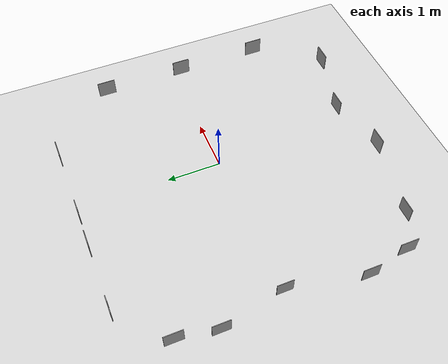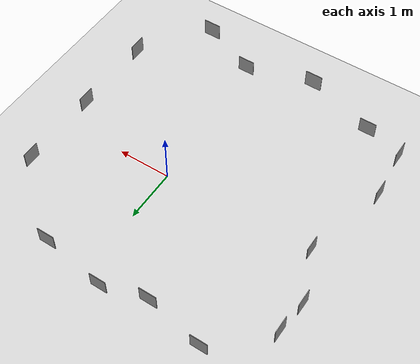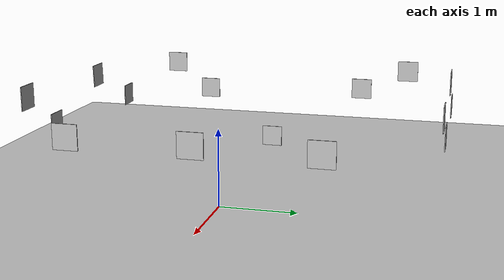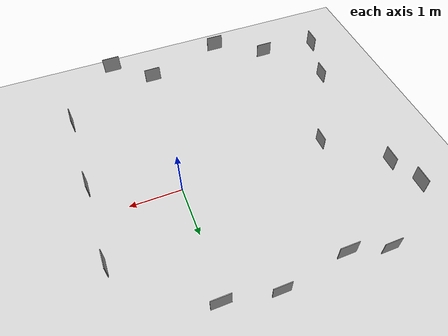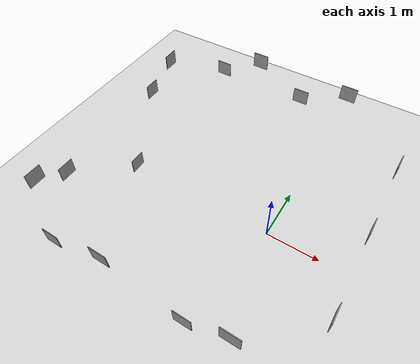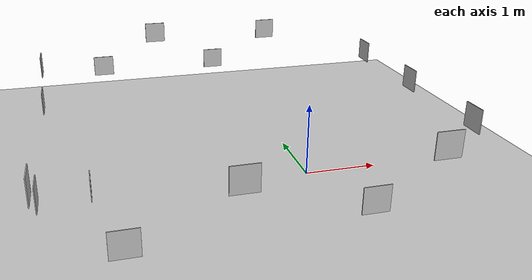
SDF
<sdf version="1.6">
 <world name="default">
  <plugin name="ros_link_attacher_plugin" filename="libgazebo_ros_link_attacher.so"/>
  <light name="sun" type="directional">
   <pose>0 0 10 0 -0 0</pose>
   <diffuse>0.8 0.8 0.8 1</diffuse>
   <specular>0.2 0.2 0.2 1</specular>
   <attenuation>
    <range>1000</range>
    <constant>0.9</constant>
    <linear>0.01</linear>
    <quadratic>0.001</quadratic>
   </attenuation>
   <direction>-0.5 0.1 -0.9</direction>
  </light>
  <model name="ground_plane">
   <static>1</static>
   <link name="link">
    <collision name="collision">
     <geometry><plane><normal>0 0 1</normal><size>100 100</size></plane></geometry>
     <surface>
      <contact><collide_bitmask>65535</collide_bitmask></contact>
      <friction><ode><mu>100</mu><mu2>50</mu2></ode></friction>
     </surface>
    </collision>
    <visual name="visual">
     <cast_shadows>0</cast_shadows>
     <geometry><plane><normal>0 0 1</normal><size>100 100</size></plane></geometry>
     <material>
      <script><uri>file://media/materials/scripts/gazebo.material</uri><name>Gazebo/Grey</name></script>
     </material>
    </visual>
   </link>
  </model>
  <gravity>0 0 -9.8</gravity>
  <magnetic_field>6e-06 2.3e-05 -4.2e-05</magnetic_field>
  <atmosphere type="adiabatic"/>
  <physics name="default_physics" default="0" type="ode">
   <max_step_size>0.001</max_step_size>
   <real_time_factor>1</real_time_factor>
   <real_time_update_rate>1000</real_time_update_rate>
  </physics>
  <scene><ambient>0.4 0.4 0.4 1</ambient><background>0.7 0.7 0.7 1</background><shadows>1</shadows></scene>
  <audio><device>default</device></audio>
  <spherical_coordinates>
   <surface_model>EARTH_WGS84</surface_model>
   <latitude_deg>0</latitude_deg>
   <longitude_deg>0</longitude_deg>
   <elevation>0</elevation>
   <heading_deg>0</heading_deg>
  </spherical_coordinates>
  <model name="Apriltag36_11_00002">
   <link name="main">
    <visual name="main_Visual">
     <geometry><box><size>0.3 0.3 0.01</size></box></geometry>
     <material>
      <script>
       <uri>model://Apriltag36_11_00002/materials/scripts</uri>
       <uri>model://Apriltag36_11_00002/materials/textures</uri>
       <name>Apriltag36_11_00002</name>
      </script>
     </material>
    </visual>
   </link>
   <static>1</static>
   <pose>1.5 0.14 1.2 -1.5708 1.57079 -1.5708</pose>
  </model>
  <model name="Apriltag36_11_00000">
   <link name="main">
    <visual name="main_Visual">
     <geometry><box><size>0.3 0.3 0.01</size></box></geometry>
     <material>
      <script>
       <uri>model://Apriltag36_11_00000/materials/scripts</uri>
       <uri>model://Apriltag36_11_00000/materials/textures</uri>
       <name>Apriltag36_11_00000</name>
      </script>
     </material>
    </visual>
   </link>
   <static>1</static>
   <pose>-0.7 2.7 0.9 -1.5708 0 0</pose>
  </model>
  <model name="Apriltag36_11_00001">
   <link name="main">
    <visual name="main_Visual">
     <geometry><box><size>0.3 0.3 0.01</size></box></geometry>
     <material>
      <script>
       <uri>model://Apriltag36_11_00001/materials/scripts</uri>
       <uri>model://Apriltag36_11_00001/materials/textures</uri>
       <name>Apriltag36_11_00001</name>
      </script>
     </material>
    </visual>
   </link>
   <static>1</static>
   <pose>-2.5 2.7 0.9 -1.5708 0 0</pose>
  </model>
  <model name="Apriltag36_11_00003">
   <link name="main">
    <visual name="main_Visual">
     <geometry><box><size>0.3 0.3 0.01</size></box></geometry>
     <material>
      <script>
       <uri>model://Apriltag36_11_00003/materials/scripts</uri>
       <uri>model://Apriltag36_11_00003/materials/textures</uri>
       <name>Apriltag36_11_00003</name>
      </script>
     </material>
    </visual>
   </link>
   <static>1</static>
   <pose>0.2 2.7 1.35 -1.5708 0 0</pose>
  </model>
  <model name="Apriltag36_11_00004">
   <link name="main">
    <visual name="main_Visual">
     <geometry><box><size>0.3 0.3 0.01</size></box></geometry>
     <material>
      <script>
       <uri>model://Apriltag36_11_00004/materials/scripts</uri>
       <uri>model://Apriltag36_11_00004/materials/textures</uri>
       <name>Apriltag36_11_00004</name>
      </script>
     </material>
    </visual>
   </link>
   <static>1</static>
   <pose>-0.17 -2.25 0.9 1.5708 -0 0</pose>
  </model>
  <model name="Apriltag36_11_00005">
   <link name="main">
    <visual name="main_Visual">
     <geometry><box><size>0.3 0.3 0.01</size></box></geometry>
     <material>
      <script>
       <uri>model://Apriltag36_11_00005/materials/scripts</uri>
       <uri>model://Apriltag36_11_00005/materials/textures</uri>
       <name>Apriltag36_11_00005</name>
      </script>
     </material>
    </visual>
   </link>
   <static>1</static>
   <pose>-2.86461 -5.2e-05 0.2 -1.57083 -1.56934 1.56937</pose>
  </model>
  <model name="Apriltag36_11_00006">
   <link name="main">
    <visual name="main_Visual">
     <geometry><box><size>0.3 0.3 0.01</size></box></geometry>
     <material>
      <script>
       <uri>model://Apriltag36_11_00006/materials/scripts</uri>
       <uri>model://Apriltag36_11_00006/materials/textures</uri>
       <name>Apriltag36_11_00006</name>
      </script>
     </material>
    </visual>
   </link>
   <static>1</static>
   <pose>-3.41028 2 1.2 1.5708 -1.57079 -1.5708</pose>
  </model>
  <model name="Apriltag36_11_00007">
   <link name="main">
    <visual name="main_Visual">
     <geometry><box><size>0.3 0.3 0.01</size></box></geometry>
     <material>
      <script>
       <uri>model://Apriltag36_11_00007/materials/scripts</uri>
       <uri>model://Apriltag36_11_00007/materials/textures</uri>
       <name>Apriltag36_11_00007</name>
      </script>
     </material>
    </visual>
   </link>
   <static>1</static>
   <pose>-3.4 -1.7 1.2 1.5708 -1.57079 -1.5708</pose>
  </model>
  <model name="Apriltag36_11_00008">
   <link name="main">
    <visual name="main_Visual">
     <geometry><box><size>0.3 0.3 0.01</size></box></geometry>
     <material>
      <script>
       <uri>model://Apriltag36_11_00008/materials/scripts</uri>
       <uri>model://Apriltag36_11_00008/materials/textures</uri>
       <name>Apriltag36_11_00008</name>
      </script>
     </material>
    </visual>
   </link>
   <static>1</static>
   <pose>1.5 -1.3 1.2 -1.5708 1.57079 -1.5708</pose>
  </model>
  <model name="Apriltag36_11_00009">
   <link name="main">
    <visual name="main_Visual">
     <geometry><box><size>0.3 0.3 0.01</size></box></geometry>
     <material>
      <script>
       <uri>model://Apriltag36_11_00009/materials/scripts</uri>
       <uri>model://Apriltag36_11_00009/materials/textures</uri>
       <name>Apriltag36_11_00009</name>
      </script>
     </material>
    </visual>
   </link>
   <static>1</static>
   <pose>-1.5 -2.25 1.3 1.6 -0 0</pose>
  </model>
  <model name="Apriltag36_11_00010">
   <link name="main">
    <visual name="main_Visual">
     <geometry><box><size>0.3 0.3 0.01</size></box></geometry>
     <material>
      <script>
       <uri>model://Apriltag36_11_00010/materials/scripts</uri>
       <uri>model://Apriltag36_11_00010/materials/textures</uri>
       <name>Apriltag36_11_00010</name>
      </script>
     </material>
    </visual>
   </link>
   <static>1</static>
   <pose>1.5 1.55 1.2 -1.5708 1.57079 -1.5708</pose>
  </model>
  <model name="Apriltag36_11_00011">
   <link name="main">
    <visual name="main_Visual">
     <geometry><box><size>0.3 0.3 0.01</size></box></geometry>
     <material>
      <script>
       <uri>model://Apriltag36_11_00011/materials/scripts</uri>
       <uri>model://Apriltag36_11_00011/materials/textures</uri>
       <name>Apriltag36_11_00011</name>
      </script>
     </material>
    </visual>
   </link>
   <static>1</static>
   <pose>0.55 -2.25 1.4 1.5708 -0 0</pose>
  </model>
  <model name="Apriltag36_11_00012">
   <link name="main">
    <visual name="main_Visual">
     <geometry><box><size>0.3 0.3 0.01</size></box></geometry>
     <material>
      <script>
       <uri>model://Apriltag36_11_00012/materials/scripts</uri>
       <uri>model://Apriltag36_11_00012/materials/textures</uri>
       <name>Apriltag36_11_00012</name>
      </script>
     </material>
    </visual>
   </link>
   <static>1</static>
   <pose>-2.6 -2.25 0.8 1.5708 -0 0</pose>
  </model>
  <model name="Apriltag36_11_00013">
   <link name="main">
    <visual name="main_Visual">
     <geometry><box><size>0.3 0.3 0.01</size></box></geometry>
     <material>
      <script>
       <uri>model://Apriltag36_11_00013/materials/scripts</uri>
       <uri>model://Apriltag36_11_00013/materials/textures</uri>
       <name>Apriltag36_11_00013</name>
      </script>
     </material>
    </visual>
   </link>
   <static>1</static>
   <pose>-1.65 2.7 1.4 -1.5708 0 0</pose>
  </model>
  <model name="Apriltag36_11_00014">
   <link name="main">
    <visual name="main_Visual">
     <geometry><box><size>0.3 0.3 0.01</size></box></geometry>
     <material>
      <script>
       <uri>model://Apriltag36_11_00014/materials/scripts</uri>
       <uri>model://Apriltag36_11_00014/materials/textures</uri>
       <name>Apriltag36_11_00014</name>
      </script>
     </material>
    </visual>
   </link>
   <static>1</static>
   <pose>-3.4 -1.15 0.8 1.5708 -1.57079 -1.5708</pose>
  </model>
  <model name="Apriltag36_11_00015">
   <link name="main">
    <visual name="main_Visual">
     <geometry><box><size>0.3 0.3 0.01</size></box></geometry>
     <material>
      <script>
       <uri>model://Apriltag36_11_00015/materials/scripts</uri>
       <uri>model://Apriltag36_11_00015/materials/textures</uri>
       <name>Apriltag36_11_00015</name>
      </script>
     </material>
    </visual>
   </link>
   <static>1</static>
   <pose>-3.4 1.3 0.9 1.5708 -1.57079 -1.5708</pose>
  </model>
 </world>
</sdf>
